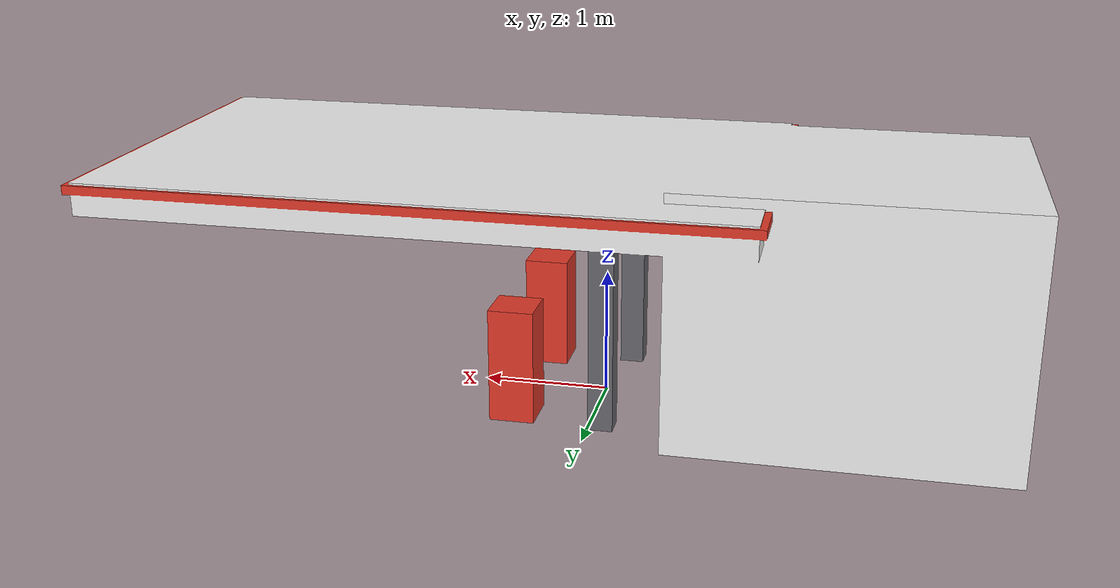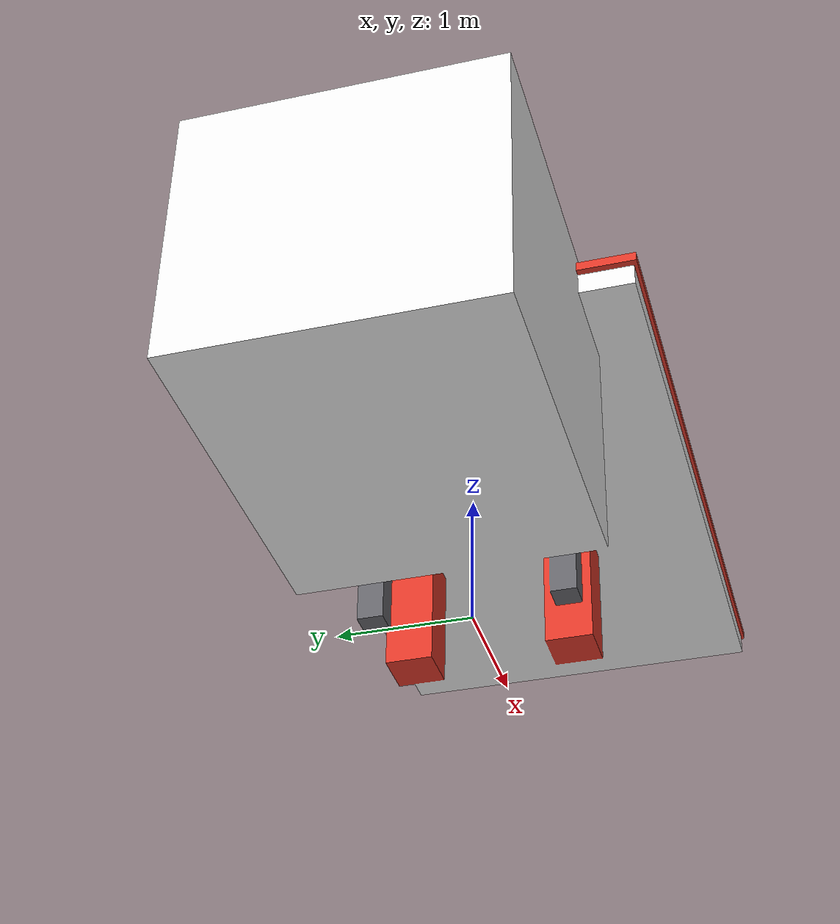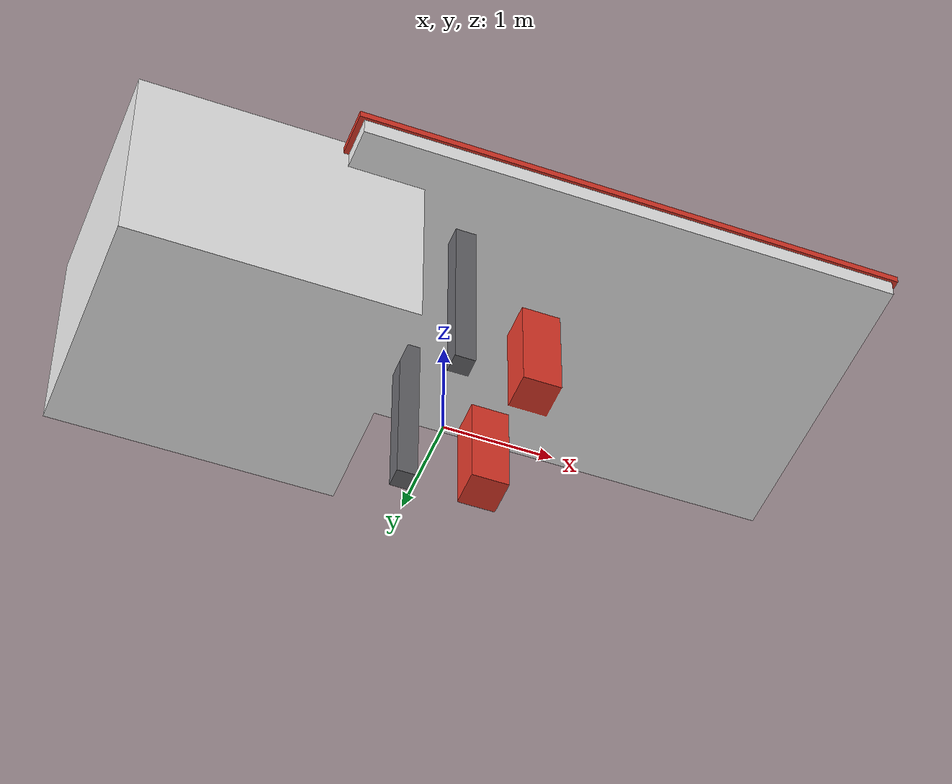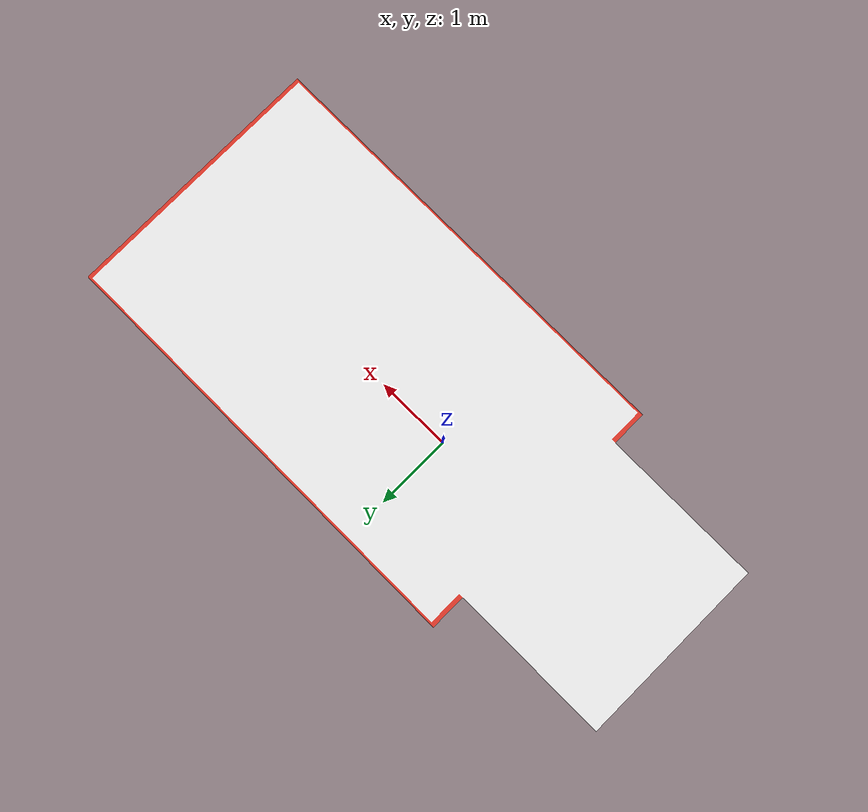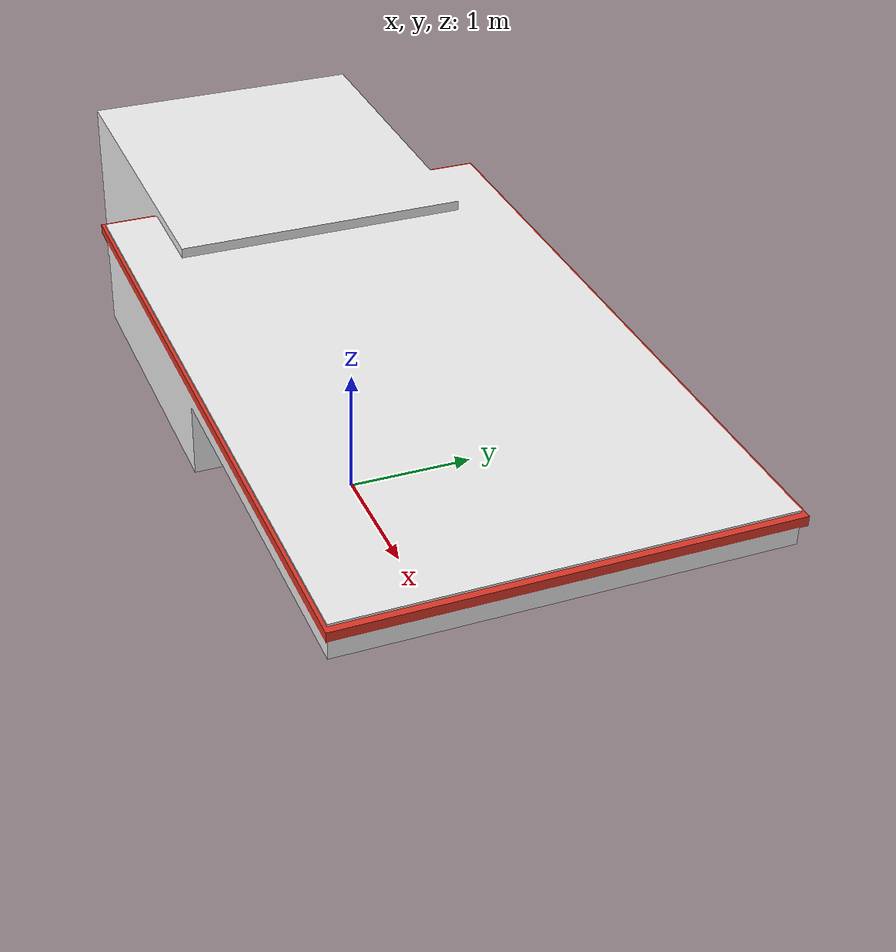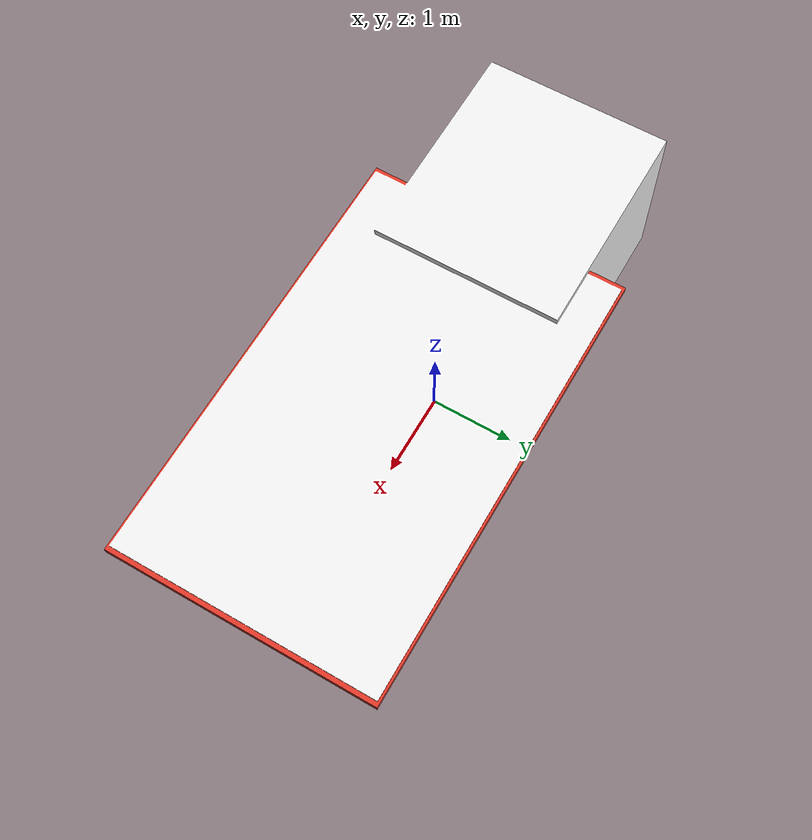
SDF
<?xml version="1.0" ?>
<sdf version="1.5">
  <model name="Gas Station">
    <static>true</static>
    <link name="link">
      <pose>0 0 0 0 0 0</pose>
      <collision name="collision">
        <geometry>
          <mesh>
            <uri>model://gas_station/meshes/gas_station.dae</uri>
            <scale>0.5 0.5 0.5</scale>
          </mesh>
        </geometry>
      </collision>
      <visual name="visual">
        <geometry>
          <mesh>
            <uri>model://gas_station/meshes/gas_station.dae</uri>
            <scale>0.5 0.5 0.5</scale>
          </mesh>
        </geometry>
        <material>
          <script>
            <uri>model://gas_station/materials/scripts</uri>
            <uri>model://gas_station/materials/textures</uri>
            <scale>0.5 0.5 0.5</scale>
            <name>GasStation/Diffuse</name>
          </script>
          <shader type="normal_map_tangent_space">
            <normal_map>GasStation_Normal.png</normal_map>
          </shader>
        </material>
      </visual>
    </link>
  </model>
</sdf>
